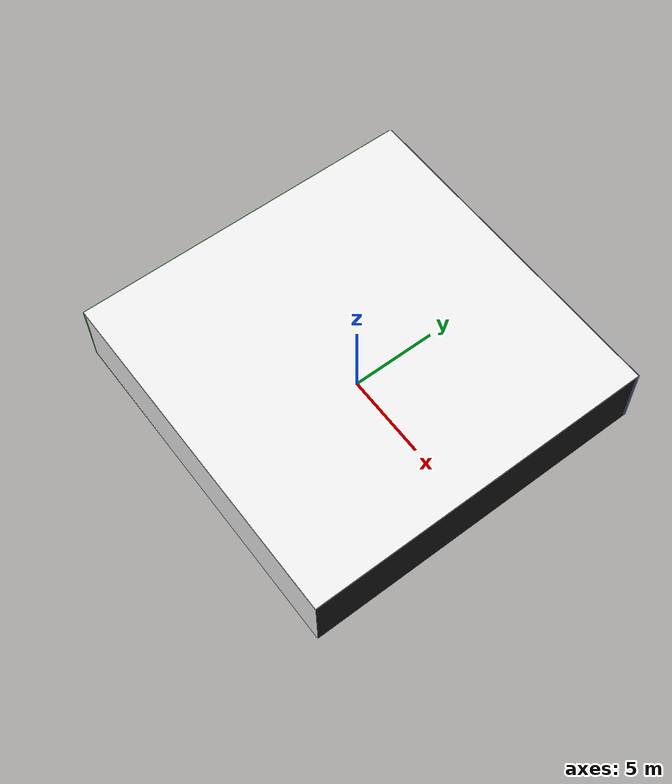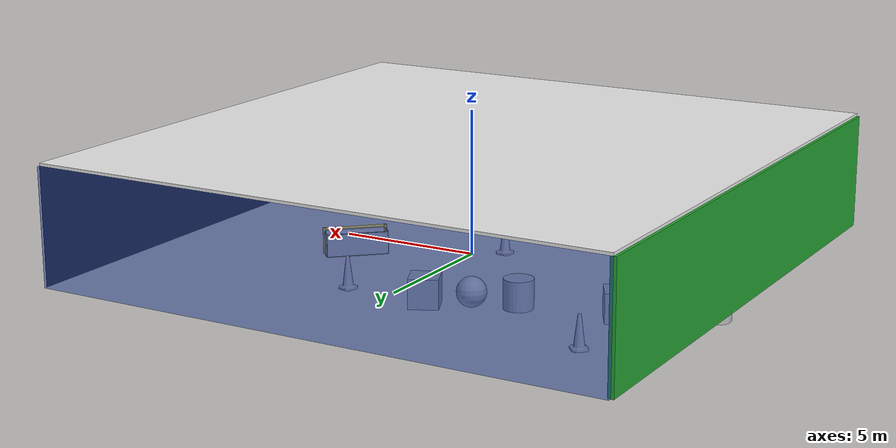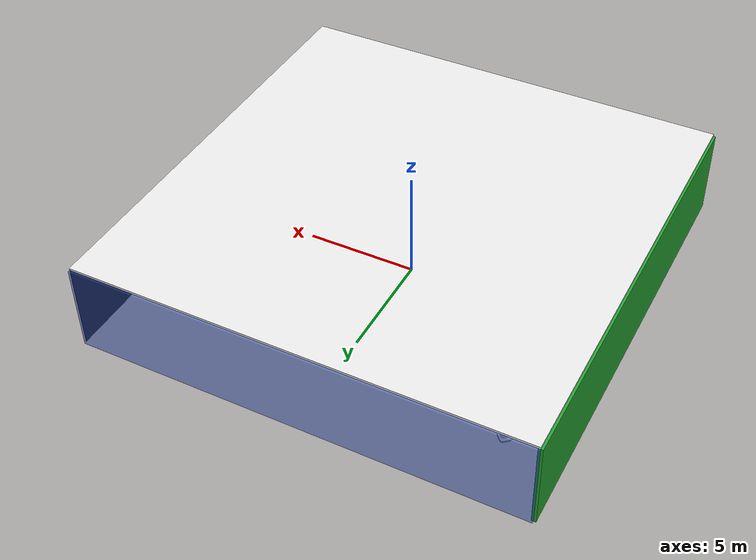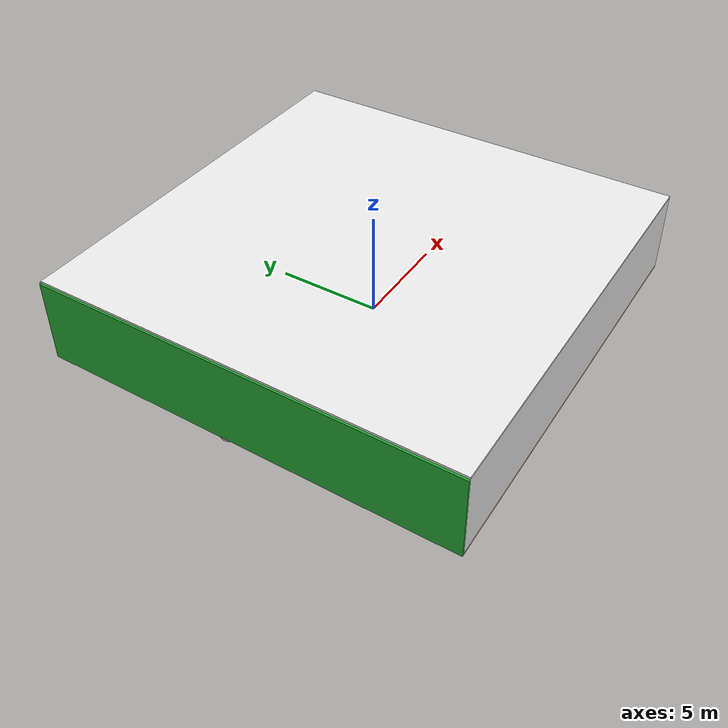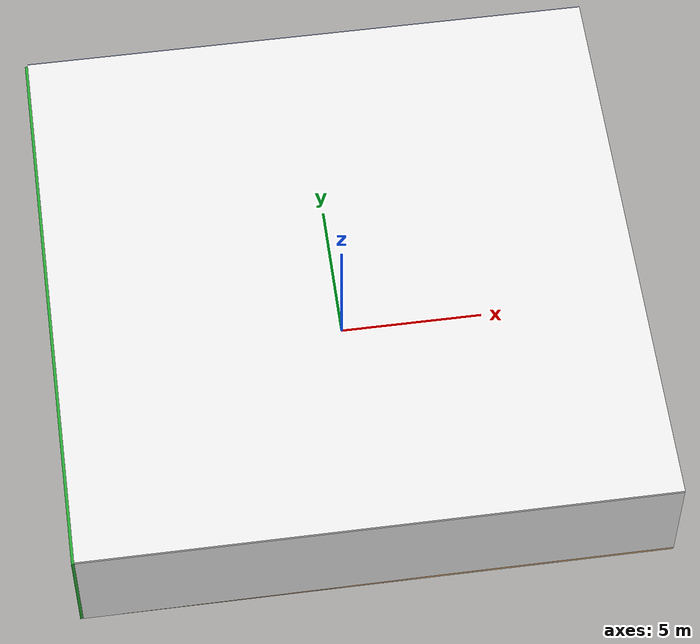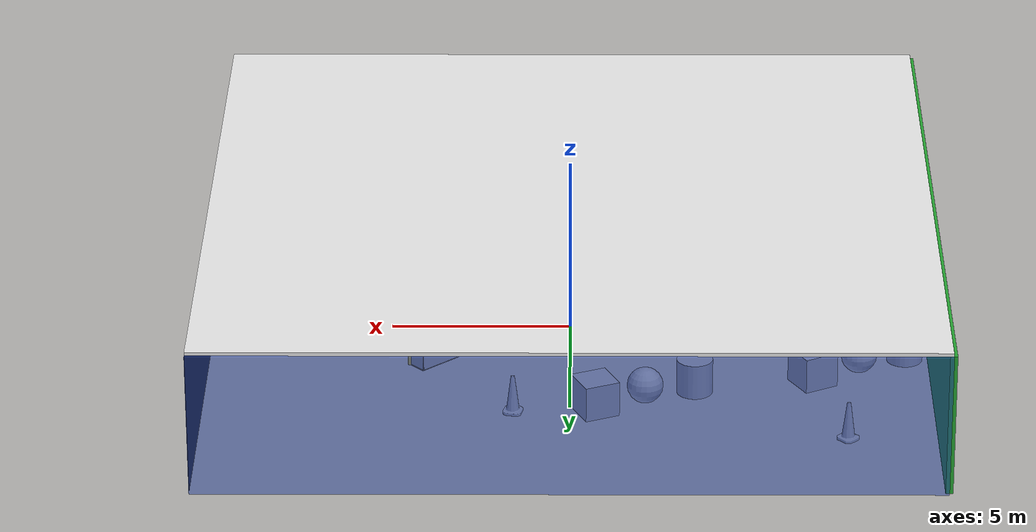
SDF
<sdf version="1.4">
 <world name="default">
  <physics type="ode">
   <max_step_size>0.001</max_step_size>
   <real_time_factor>1</real_time_factor>
   <real_time_update_rate>1000</real_time_update_rate>
   <gravity>0 0 -9.8</gravity>
  </physics>
  <scene><ambient>0.4 0.4 0.4 1</ambient><background>0.7 0.7 0.7 1</background><shadows>1</shadows></scene>
  <model name="Surrounding">
   <static>1</static>
   <link name="Ceiling">
    <collision name="Ceiling_Collision"><geometry><box><size>20 20 0.1</size></box></geometry></collision>
    <visual name="Ceiling_Visual">
     <geometry><box><size>20 20 0.1</size></box></geometry>
     <material>
      <script><uri>file://media/materials/scripts/gazebo.material</uri><name>Gazebo/WhiteGlow</name></script>
     </material>
    </visual>
    <pose>0 0 4.05 0 0 0</pose>
   </link>
   <link name="Wall_South">
    <collision name="Wall_South_Collision">
     <geometry><box><size>20 0 4</size></box></geometry>
     <pose>0 0 2 0 -0 0</pose>
    </collision>
    <visual name="Wall_South_Visual">
     <pose>0 0 2 0 -0 0</pose>
     <geometry><box><size>20 0 4</size></box></geometry>
     <material>
      <script><uri>file://media/materials/scripts/gazebo.material</uri><name>Gazebo/White</name></script>
     </material>
    </visual>
    <velocity_decay><linear>0</linear><angular>0</angular></velocity_decay>
    <pose>0 -10 0 0 -0 0</pose>
   </link>
   <link name="Wall_East">
    <collision name="Wall_21_Collision">
     <geometry><box><size>20 0 4</size></box></geometry>
     <pose>0 0 2 0 -0 0</pose>
    </collision>
    <visual name="Wall_21_Visual">
     <pose>0 0 2 0 -0 0</pose>
     <geometry><box><size>20 0 4</size></box></geometry>
     <material>
      <script><uri>file://media/materials/scripts/gazebo.material</uri><name>Gazebo/FlatBlack</name></script>
     </material>
    </visual>
    <velocity_decay><linear>0</linear><angular>0</angular></velocity_decay>
    <pose>10 0 0 0 -0 1.5708</pose>
   </link>
   <link name="Wall_North">
    <collision name="Wall_22_Collision">
     <geometry><box><size>20 0.2 4</size></box></geometry>
     <pose>0 0 2 0 -0 0</pose>
    </collision>
    <visual name="Wall_22_Visual">
     <pose>0 0 2 0 -0 0</pose>
     <geometry><box><size>20 0.2 4</size></box></geometry>
     <material>
      <script><uri>file://media/materials/scripts/gazebo.material</uri><name>Gazebo/BlueTransparent</name></script>
     </material>
    </visual>
    <velocity_decay><linear>0</linear><angular>0</angular></velocity_decay>
    <pose>0 10 0 0 -0 0</pose>
   </link>
   <link name="Wall_West">
    <collision name="Wall_23_Collision">
     <geometry><box><size>20 0.2 4</size></box></geometry>
     <pose>0 0 2 0 -0 0</pose>
    </collision>
    <visual name="Wall_23_Visual">
     <pose>0 0 2 0 -0 0</pose>
     <geometry><box><size>20 0.2 4</size></box></geometry>
     <material>
      <script><uri>file://media/materials/scripts/gazebo.material</uri><name>Gazebo/GreenGlow</name></script>
     </material>
    </visual>
    <velocity_decay><linear>0</linear><angular>0</angular></velocity_decay>
    <pose>-10 0 0 0 0 -1.5708</pose>
   </link>
   <link name="Ground_link">
    <collision name="collision">
     <pose>0 0 .05 0 -0 0</pose>
     <geometry><box><size>20 20 0.1</size></box></geometry>
    </collision>
    <visual name="visual">
     <pose>0 0 .05 0 -0 0</pose>
     <geometry><box><size>20 20 0.1</size></box></geometry>
     <material>
      <script>
       <uri>file://media/materials/scripts/gazebo.material</uri>
       <name>Gazebo/OrangeTransparent</name>
      </script>
     </material>
    </visual>
   </link>
   <static>1</static>
  </model>
  <spherical_coordinates>
   <surface_model>EARTH_WGS84</surface_model>
   <latitude_deg>0</latitude_deg>
   <longitude_deg>0</longitude_deg>
   <elevation>0</elevation>
   <heading_deg>0</heading_deg>
  </spherical_coordinates>
  <light name="lightball_0" type="diffuse">
   <diffuse>0.8 0.8 0.8 1</diffuse>
   <specular>0.2 0.2 0.2 1</specular>
   <attenuation>
    <range>100</range>
    <constant>0.7</constant>
    <linear>0.01</linear>
    <quadratic>0.001</quadratic>
   </attenuation>
   <direction>-0.5 0.1 -0.9</direction>
   <pose>-9.7435182281 9.14182146706 1.93302829506 0 0 0</pose>
  </light>
  <light name="lightball_1" type="diffuse">
   <diffuse>0.8 0.8 0.8 1</diffuse>
   <specular>0.2 0.2 0.2 1</specular>
   <attenuation>
    <range>100</range>
    <constant>0.7</constant>
    <linear>0.01</linear>
    <quadratic>0.001</quadratic>
   </attenuation>
   <direction>-0.5 0.1 -0.9</direction>
   <pose>5.94884223516 -1.24950276879 2.96128063795 0 0 0</pose>
  </light>
  <light name="lightball_2" type="diffuse">
   <diffuse>0.8 0.8 0.8 1</diffuse>
   <specular>0.2 0.2 0.2 1</specular>
   <attenuation>
    <range>100</range>
    <constant>0.7</constant>
    <linear>0.01</linear>
    <quadratic>0.001</quadratic>
   </attenuation>
   <direction>-0.5 0.1 -0.9</direction>
   <pose>7.61761522897 3.8429811639 0.818282742259 0 0 0</pose>
  </light>
  <light name="lightball_3" type="diffuse">
   <diffuse>0.8 0.8 0.8 1</diffuse>
   <specular>0.2 0.2 0.2 1</specular>
   <attenuation>
    <range>100</range>
    <constant>0.7</constant>
    <linear>0.01</linear>
    <quadratic>0.001</quadratic>
   </attenuation>
   <direction>-0.5 0.1 -0.9</direction>
   <pose>-6.29894851498 3.39616177355 2.94542353923 0 0 0</pose>
  </light>
  <light name="lightball_4" type="diffuse">
   <diffuse>0.8 0.8 0.8 1</diffuse>
   <specular>0.2 0.2 0.2 1</specular>
   <attenuation>
    <range>100</range>
    <constant>0.7</constant>
    <linear>0.01</linear>
    <quadratic>0.001</quadratic>
   </attenuation>
   <direction>-0.5 0.1 -0.9</direction>
   <pose>2.58264203687 0.542551786353 2.69225103846 0 0 0</pose>
  </light>
  <light name="lightball_5" type="diffuse">
   <diffuse>0.8 0.8 0.8 1</diffuse>
   <specular>0.2 0.2 0.2 1</specular>
   <attenuation>
    <range>100</range>
    <constant>0.7</constant>
    <linear>0.01</linear>
    <quadratic>0.001</quadratic>
   </attenuation>
   <direction>-0.5 0.1 -0.9</direction>
   <pose>9.36999374436 -8.08611222097 2.38845568611 0 0 0</pose>
  </light>
  <light name="lightball_6" type="diffuse">
   <diffuse>0.8 0.8 0.8 1</diffuse>
   <specular>0.2 0.2 0.2 1</specular>
   <attenuation>
    <range>100</range>
    <constant>0.7</constant>
    <linear>0.01</linear>
    <quadratic>0.001</quadratic>
   </attenuation>
   <direction>-0.5 0.1 -0.9</direction>
   <pose>5.67143810568 -9.16987614959 1.96914693133 0 0 0</pose>
  </light>
  <light name="lightball_7" type="diffuse">
   <diffuse>0.8 0.8 0.8 1</diffuse>
   <specular>0.2 0.2 0.2 1</specular>
   <attenuation>
    <range>100</range>
    <constant>0.7</constant>
    <linear>0.01</linear>
    <quadratic>0.001</quadratic>
   </attenuation>
   <direction>-0.5 0.1 -0.9</direction>
   <pose>-7.7427821281 -3.25320634414 3.8891632287 0 0 0</pose>
  </light>
  <light name="lightball_8" type="diffuse">
   <diffuse>0.8 0.8 0.8 1</diffuse>
   <specular>0.2 0.2 0.2 1</specular>
   <attenuation>
    <range>100</range>
    <constant>0.7</constant>
    <linear>0.01</linear>
    <quadratic>0.001</quadratic>
   </attenuation>
   <direction>-0.5 0.1 -0.9</direction>
   <pose>6.48253146716 -6.27864295907 0.946845590993 0 0 0</pose>
  </light>
  <light name="lightball_9" type="diffuse">
   <diffuse>0.8 0.8 0.8 1</diffuse>
   <specular>0.2 0.2 0.2 1</specular>
   <attenuation>
    <range>100</range>
    <constant>0.7</constant>
    <linear>0.01</linear>
    <quadratic>0.001</quadratic>
   </attenuation>
   <direction>-0.5 0.1 -0.9</direction>
   <pose>3.95792227514 2.99282503634 3.66191555982 0 0 0</pose>
  </light>
  <include>
   <uri>model://textured_shapes</uri>
   <pose>-8.02317949606 1.7469267528 0 0 0 2.07551483685</pose>
  </include>
  <include>
   <uri>model://construction_cone</uri>
   <pose>-7.4866100939 6.85933040261 0 0 0 0.75324070068</pose>
  </include>
  <include>
   <uri>model://robocup_3Dsim_goal</uri>
   <pose>-5.11046299797 -7.78049949118 0 0 0 1.93353827819</pose>
  </include>
  <include>
   <uri>model://construction_cone</uri>
   <pose>-0.926639395178 -0.640669488689 0 0 0 1.43537934839</pose>
  </include>
  <include>
   <uri>model://textured_shapes</uri>
   <pose>-2.06249546898 3.642213031 0 0 0 1.99020668593</pose>
  </include>
  <include>
   <uri>model://construction_cone</uri>
   <pose>1.54523846296 5.29206258434 0 0 0 2.92270307572</pose>
  </include>
  <include><uri>model://cabinet</uri><pose>4.17821384736 -7.93218108891 0 0 0 2.07741332398</pose></include>
  <include>
   <uri>model://robocup_3Dsim_goal</uri>
   <pose>5.69798613583 -5.23191336615 0 0 0 0.224667228521</pose>
  </include>
  <include>
   <uri>model://robocup_3Dsim_goal</uri>
   <pose>3.66005765115 1.66768598406 0 0 0 2.31395064638</pose>
  </include>
 </world>
</sdf>

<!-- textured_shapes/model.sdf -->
<sdf version="1.6">
  <model name="textured_shapes">
    <pose>0 0 0.5 0 0 0</pose>
    <link name="box">
      <pose>0 -1.5 0 0 0 0</pose>
      <collision name="collision">
        <geometry>
          <box>
            <size>1 1 1</size>
          </box>
        </geometry>
      </collision>
      <visual name="visual">
        <geometry>
          <box>
            <size>1 1 1</size>
          </box>
        </geometry>
        <material>
          <script>
            <uri>model://../model_source/models/textured_shapes/materials/scripts</uri>
            <uri>model://../model_source/models/textured_shapes/materials/textures</uri>
            <name>TexturedShape/Squares</name>
          </script>
        </material>
      </visual>
    </link>
    <link name="sphere">
      <collision name="collision">
        <geometry>
          <sphere>
            <radius>0.5</radius>
          </sphere>
        </geometry>
      </collision>
      <visual name="visual">
        <geometry>
          <sphere>
            <radius>0.5</radius>
          </sphere>
        </geometry>
        <material>
          <script>
            <uri>model://../model_source/models/textured_shapes/materials/scripts</uri>
            <uri>model://../model_source/models/textured_shapes/materials/textures</uri>
            <name>TexturedShape/Squares</name>
          </script>
        </material>
      </visual>
    </link>
    <link name="cylinder">
      <pose>0 1.5 0 0 0 0</pose>
      <collision name="collision">
        <geometry>
          <cylinder>
            <radius>0.5</radius>
            <length>1</length>
          </cylinder>
        </geometry>
      </collision>
      <visual name="visual">
        <geometry>
          <cylinder>
            <radius>0.5</radius>
            <length>1</length>
          </cylinder>
        </geometry>
        <material>
          <script>
            <uri>model://../model_source/models/textured_shapes/materials/scripts</uri>
            <uri>model://../model_source/models/textured_shapes/materials/textures</uri>
            <name>TexturedShape/Squares</name>
          </script>
        </material>
      </visual>
    </link>
  </model>
</sdf>

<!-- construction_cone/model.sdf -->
<sdf version="1.5">
  <model name="Construction Cone">
    <link name="link">
      <collision name="collision">
        <geometry>
          <mesh>
            <scale>10 10 10</scale>
            <uri>file://isr-testbed/construction_cone/meshes/construction_cone.dae</uri>
          </mesh>
        </geometry>
      </collision>
      <visual name="visual">
        <geometry>
          <mesh>
            <scale>10 10 10</scale>
            <uri>file://isr-testbed/construction_cone/meshes/construction_cone.dae</uri>
          </mesh>
        </geometry>
      </visual>
    </link>
  </model>
</sdf>

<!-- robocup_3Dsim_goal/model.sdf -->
<sdf version="1.5">
  <model name="robocup_3d_goal">
    <static>true</static>
    <link name="left_post">
      <pose>0 1.05 0.45 0 0 0</pose>
      <collision name="collision">
        <geometry>
          <cylinder>
            <radius>0.05</radius>
            <length>0.9</length>
          </cylinder>
        </geometry>
      </collision>
      <visual name="visual">
        <geometry>
          <cylinder>
            <radius>0.05</radius>
            <length>0.9</length>
          </cylinder>
        </geometry>
        <material>
          <script>
            <uri>file://media/materials/scripts/gazebo.material</uri>
            <name>Gazebo/ZincYellow</name>
          </script>
        </material>
      </visual>
    </link>
    <link name="left_support_horiz_lower">
      <pose>0.30 1.05 0.01 0 0 0</pose>
      <collision name="collision">
        <geometry>
          <box>
            <size>0.50 0.02 0.02</size>
          </box>
        </geometry>
      </collision>
      <visual name="visual">
        <geometry>
          <box>
            <size>0.50 0.02 0.02</size>
          </box>
        </geometry>
        <material>
          <script>
            <uri>file://media/materials/scripts/gazebo.material</uri>
            <name>Gazebo/White</name>
          </script>
        </material>
      </visual>
    </link>
    <link name="left_support_horiz_upper">
      <pose>0.30 1.05 0.79 0 0 0</pose>
      <collision name="collision">
        <geometry>
          <box>
            <size>0.50 0.02 0.02</size>
          </box>
        </geometry>
      </collision>
      <visual name="visual">
        <geometry>
          <box>
            <size>0.50 0.02 0.02</size>
          </box>
        </geometry>
        <material>
          <script>
            <uri>file://media/materials/scripts/gazebo.material</uri>
            <name>Gazebo/White</name>
          </script>
        </material>
      </visual>
    </link>
    <link name="left_support_vertical">
      <pose>0.56 1.05 0.4 0 1.5708 0</pose>
      <collision name="collision">
        <geometry>
          <box>
            <size>0.80 0.02 0.02</size>
          </box>
        </geometry>
      </collision>
      <visual name="visual">
        <geometry>
          <box>
            <size>0.80 0.02 0.02</size>
          </box>
        </geometry>
        <material>
          <script>
            <uri>file://media/materials/scripts/gazebo.material</uri>
            <name>Gazebo/White</name>
          </script>
        </material>
      </visual>
    </link>
    <link name="right_support_horiz_lower">
      <pose>0.30 -1.05 0.01 0 0 0</pose>
      <collision name="collision">
        <geometry>
          <box>
            <size>0.50 0.02 0.02</size>
          </box>
        </geometry>
      </collision>
      <visual name="visual">
        <geometry>
          <box>
            <size>0.50 0.02 0.02</size>
          </box>
        </geometry>
        <material>
          <script>
            <uri>file://media/materials/scripts/gazebo.material</uri>
            <name>Gazebo/White</name>
          </script>
        </material>
      </visual>
    </link>
    <link name="right_support_horiz_upper">
      <pose>0.30 -1.05 0.79 0 0 0</pose>
      <collision name="collision">
        <geometry>
          <box>
            <size>0.50 0.02 0.02</size>
          </box>
        </geometry>
      </collision>
      <visual name="visual">
        <geometry>
          <box>
            <size>0.50 0.02 0.02</size>
          </box>
        </geometry>
        <material>
          <script>
            <uri>file://media/materials/scripts/gazebo.material</uri>
            <name>Gazebo/White</name>
          </script>
        </material>
      </visual>
    </link>
    <link name="right_support_vertical">
      <pose>0.56 -1.05 0.4 0 1.5708 0</pose>
      <collision name="collision">
        <geometry>
          <box>
            <size>0.80 0.02 0.02</size>
          </box>
        </geometry>
      </collision>
      <visual name="visual">
        <geometry>
          <box>
            <size>0.80 0.02 0.02</size>
          </box>
        </geometry>
        <material>
          <script>
            <uri>file://media/materials/scripts/gazebo.material</uri>
            <name>Gazebo/White</name>
          </script>
        </material>
      </visual>
    </link>
    <link name="center_support_horiz_lower">
      <pose>0.56 0 0.01 0 1.5708 0</pose>
      <collision name="collision">
        <geometry>
          <box>
            <size>0.02 2.08 0.02</size>
          </box>
        </geometry>
      </collision>
      <visual name="visual">
        <geometry>
          <box>
            <size>0.02 2.08 0.02</size>
          </box>
        </geometry>
        <material>
          <script>
            <uri>file://media/materials/scripts/gazebo.material</uri>
            <name>Gazebo/White</name>
          </script>
        </material>
      </visual>
    </link>
    <link name="center_support_horiz_upper">
      <pose>0.56 0 0.79 0 1.5708 0</pose>
      <collision name="collision">
        <geometry>
          <box>
            <size>0.02 2.08 0.02</size>
          </box>
        </geometry>
      </collision>
      <visual name="visual">
        <geometry>
          <box>
            <size>0.02 2.08 0.02</size>
          </box>
        </geometry>
        <material>
          <script>
            <uri>file://media/materials/scripts/gazebo.material</uri>
            <name>Gazebo/White</name>
          </script>
        </material>
      </visual>
    </link>
    <link name="right_post">
      <pose>0 -1.05 0.45 0 0 0</pose>
      <collision name="collision">
        <geometry>
          <cylinder>
            <radius>0.05</radius>
            <length>0.9</length>
          </cylinder>
        </geometry>
      </collision>
      <visual name="visual">
        <geometry>
          <cylinder>
            <radius>0.05</radius>
            <length>0.9</length>
          </cylinder>
        </geometry>
        <material>
          <script>
            <uri>file://media/materials/scripts/gazebo.material</uri>
            <name>Gazebo/ZincYellow</name>
          </script>
        </material>
      </visual>
    </link>
    <link name="crossbar">
      <pose>0 0 0.85 1.57 1.57 0</pose>
      <collision name="collision">
        <geometry>
          <cylinder>
            <radius>0.05</radius>
            <length>2.0</length>
          </cylinder>
        </geometry>
      </collision>
      <visual name="visual">
        <geometry>
          <cylinder>
            <radius>0.05</radius>
            <length>2.0</length>
          </cylinder>
        </geometry>
        <material>
          <script>
            <uri>file://media/materials/scripts/gazebo.material</uri>
            <name>Gazebo/ZincYellow</name>
          </script>
        </material>
      </visual>
    </link>
    <link name="center_net">
      <pose>0.56 0 0.40 0 0 0</pose>
      <collision name="collision">
        <geometry>
          <box>
            <size>0.01 2.1 0.80</size>
          </box>
        </geometry>
      </collision>
      <visual name="visual">
        <geometry>
          <box>
            <size>0.01 2.1 0.80</size>
          </box>
        </geometry>
        <material>
          <script>
            <uri>model://../model_source/models/robocup09_spl_field/materials/scripts/</uri>
            <uri>model://../model_source/models/robocup09_spl_field/materials/textures/</uri>
            <name>RoboCup/Net</name>
          </script>
        </material>
      </visual>
    </link>
    <link name="left_net">
      <pose>0.30 1.05 0.40 0 0 0</pose>
      <collision name="collision">
        <geometry>
          <box>
            <size>0.50 0.01 0.76</size>
          </box>
        </geometry>
      </collision>
      <visual name="visual">
        <geometry>
          <box>
            <size>0.50 0.01 0.76</size>
          </box>
        </geometry>
        <material>
          <script>
            <uri>model://../model_source/models/robocup09_spl_field/materials/scripts/</uri>
            <uri>model://../model_source/models/robocup09_spl_field/materials/textures/</uri>
            <name>RoboCup/Net</name>
          </script>
        </material>
      </visual>
    </link>
    <link name="right_net">
      <pose>0.30 -1.05 0.40 0 0 0</pose>
      <collision name="collision">
        <geometry>
          <box>
            <size>0.50 0.01 0.76</size>
          </box>
        </geometry>
      </collision>
      <visual name="visual">
        <geometry>
          <box>
            <size>0.50 0.01 0.76</size>
          </box>
        </geometry>
        <material>
          <script>
            <uri>model://../model_source/models/robocup09_spl_field/materials/scripts/</uri>
            <uri>model://../model_source/models/robocup09_spl_field/materials/textures/</uri>
            <name>RoboCup/Net</name>
          </script>
        </material>
      </visual>
    </link>
  </model>
</sdf>

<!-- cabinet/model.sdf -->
<sdf version="1.5">
  <model name="cabinet">
    <static>true</static>
    <link name="cabinet_bottom_plate">
      <inertial>
        <pose>0 0 -1 0 0 0</pose>
        <inertia>
          <ixx>2.050000</ixx>
          <ixy>0</ixy>
          <ixz>0</ixz>
          <iyy>2.050000</iyy>
          <iyz>0</iyz>
          <izz>2.050000</izz>
        </inertia>
        <mass>25.000000</mass>
      </inertial>
      <collision name="cabinet_bottom_plate_geom">
        <pose>0 0 0.010000 0 0 0</pose>
        <geometry>
          <box>
            <size>0.450000 0.450000 0.020000</size>
          </box>
        </geometry>
      </collision>
      <visual name="cabinet_bottom_plate_geom_visual">
        <pose>0 0 0.010000 0 0 0</pose>
        <geometry>
          <box>
            <size>0.450000 0.450000 0.020000</size>
          </box>
        </geometry>
        <material>
          <script>
            <uri>model://media/materials/scripts/gazebo.material</uri>
            <name>Gazebo/Wood</name>
          </script>
        </material>
      </visual>
      <collision name="cabinet_bottom_plate_geom_cabinet_back_plate">
        <pose>0.235000 0 0.510000 0 0 0</pose>
        <geometry>
          <box>
            <size>0.020000 0.450000 1.020000</size>
          </box>
        </geometry>
      </collision>
      <visual name="cabinet_bottom_plate_geom_cabinet_back_plate_visual">
        <pose>0.235000 0 0.510000 0 0 0</pose>
        <geometry>
          <box>
            <size>0.020000 0.450000 1.020000</size>
          </box>
        </geometry>
        <material>
          <script>
            <uri>model://media/materials/scripts/gazebo.material</uri>
            <name>Gazebo/Wood</name>
          </script>
        </material>
      </visual>
      <collision name="cabinet_bottom_plate_geom_cabinet_left_plate">
        <pose>0 0.235000 0.510000 0 0 0</pose>
        <geometry>
          <box>
            <size>0.450000 0.020000 1.020000</size>
          </box>
        </geometry>
      </collision>
      <visual name="cabinet_bottom_plate_geom_cabinet_left_plate_visual">
        <pose>0 0.235000 0.510000 0 0 0</pose>
        <geometry>
          <box>
            <size>0.450000 0.020000 1.020000</size>
          </box>
        </geometry>
        <material>
          <script>
            <uri>model://media/materials/scripts/gazebo.material</uri>
            <name>Gazebo/Wood</name>
          </script>
        </material>
      </visual>
      <collision name="cabinet_bottom_plate_geom_cabinet_middle_plate">
        <pose>0 0 0.510000 0 0 0</pose>
        <geometry>
          <box>
            <size>0.450000 0.450000 0.020000</size>
          </box>
        </geometry>
      </collision>
      <visual name="cabinet_bottom_plate_geom_cabinet_middle_plate_visual">
        <pose>0 0 0.510000 0 0 0</pose>
        <geometry>
          <box>
            <size>0.450000 0.450000 0.020000</size>
          </box>
        </geometry>
        <material>
          <script>
            <uri>model://media/materials/scripts/gazebo.material</uri>
            <name>Gazebo/Wood</name>
          </script>
        </material>
      </visual>
      <collision name="cabinet_bottom_plate_geom_cabinet_right_plate">
        <pose>0 -0.235000 0.510000 0 0 0</pose>
        <geometry>
          <box>
            <size>0.450000 0.020000 1.020000</size>
          </box>
        </geometry>
      </collision>
      <visual name="cabinet_bottom_plate_geom_cabinet_right_plate_visual">
        <pose>0 -0.235000 0.510000 0 0 0</pose>
        <geometry>
          <box>
            <size>0.450000 0.020000 1.020000</size>
          </box>
        </geometry>
        <material>
          <script>
            <uri>model://media/materials/scripts/gazebo.material</uri>
            <name>Gazebo/Wood</name>
          </script>
        </material>
      </visual>
      <collision name="cabinet_bottom_plate_geom_cabinet_top_plate">
        <pose>0 0 1.010000 0 0 0</pose>
        <geometry>
          <box>
            <size>0.450000 0.450000 0.020000</size>
          </box>
        </geometry>
      </collision>
      <visual name="cabinet_bottom_plate_geom_cabinet_top_plate_visual">
        <pose>0 0 1.010000 0 0 0</pose>
        <geometry>
          <box>
            <size>0.450000 0.450000 0.020000</size>
          </box>
        </geometry>
        <material>
          <script>
            <uri>model://media/materials/scripts/gazebo.material</uri>
            <name>Gazebo/Wood</name>
          </script>
        </material>
      </visual>
    </link>
  </model>
</sdf>
